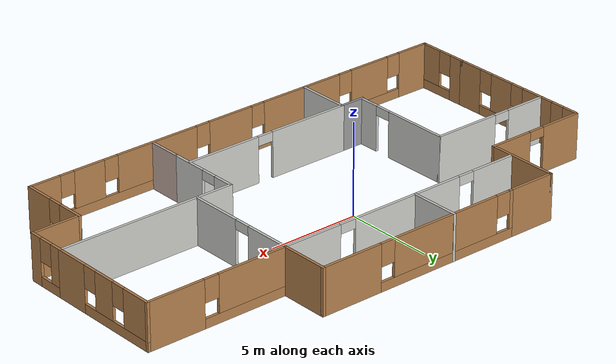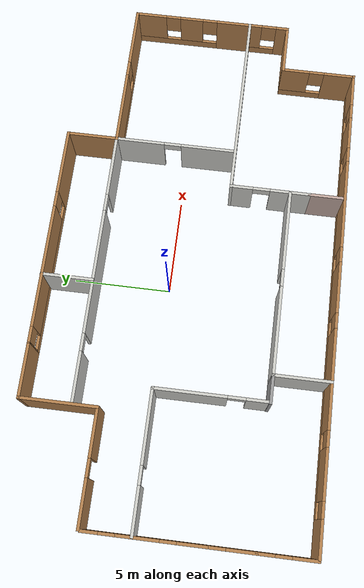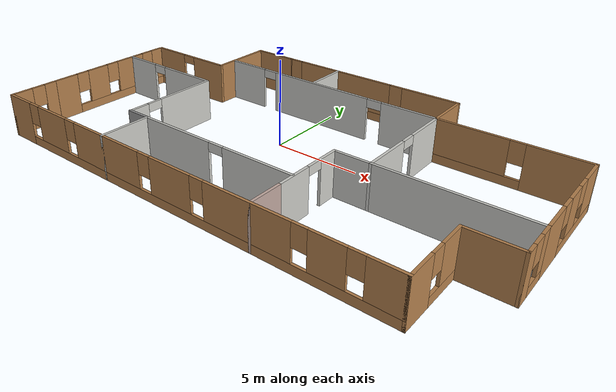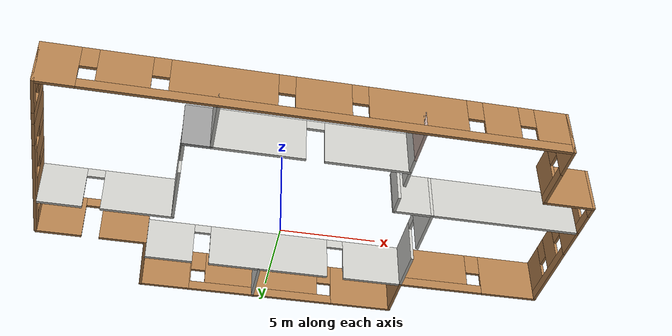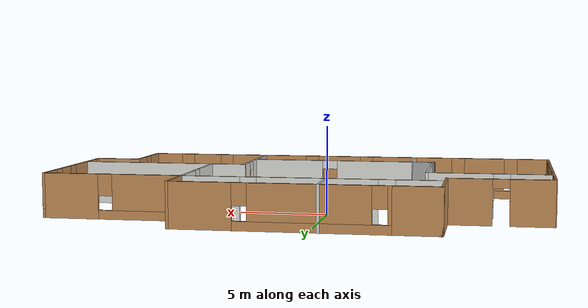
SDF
<?xml version='1.0'?>
<sdf version='1.6'>
  <model name='Building'>
    <pose frame=''>1.39 -1.1034 0 0 -0 0</pose>
    <link name='Wall_10'>
      <pose frame=''>-1.3 -7.4566 0 0 -0 0</pose>
      <visual name='Wall_10_Visual_0'>
        <pose frame=''>-11.6648 0 1.25 0 -0 0</pose>
        <geometry>
          <box>
            <size>1.92035 0.15 2.5</size>
          </box>
        </geometry>
        <material>
          <script>
            <uri>file://media/materials/scripts/gazebo.material</uri>
            <name>Gazebo/Wood</name>
          </script>
          <ambient>1 1 1 1</ambient>
        </material>
        <meta>
          <layer>0</layer>
        </meta>
      </visual>
      <collision name='Wall_10_Collision_0'>
        <geometry>
          <box>
            <size>1.92035 0.15 2.5</size>
          </box>
        </geometry>
        <pose frame=''>-11.6648 0 1.25 0 -0 0</pose>
      </collision>
      <visual name='Wall_10_Visual_1'>
        <pose frame=''>0.960175 0 0.25 0 -0 0</pose>
        <geometry>
          <box>
            <size>23.3296 0.15 0.5</size>
          </box>
        </geometry>
        <material>
          <script>
            <uri>file://media/materials/scripts/gazebo.material</uri>
            <name>Gazebo/Wood</name>
          </script>
          <ambient>1 1 1 1</ambient>
        </material>
        <meta>
          <layer>0</layer>
        </meta>
      </visual>
      <collision name='Wall_10_Collision_1'>
        <geometry>
          <box>
            <size>23.3296 0.15 0.5</size>
          </box>
        </geometry>
        <pose frame=''>0.960175 0 0.25 0 -0 0</pose>
      </collision>
      <visual name='Wall_10_Visual_2'>
        <pose frame=''>-8.67573 0 1.5 0 -0 0</pose>
        <geometry>
          <box>
            <size>2.45784 0.15 2</size>
          </box>
        </geometry>
        <material>
          <script>
            <uri>file://media/materials/scripts/gazebo.material</uri>
            <name>Gazebo/Wood</name>
          </script>
          <ambient>1 1 1 1</ambient>
        </material>
        <meta>
          <layer>0</layer>
        </meta>
      </visual>
      <collision name='Wall_10_Collision_2'>
        <geometry>
          <box>
            <size>2.45784 0.15 2</size>
          </box>
        </geometry>
        <pose frame=''>-8.67573 0 1.5 0 -0 0</pose>
      </collision>
      <visual name='Wall_10_Visual_3'>
        <pose frame=''>-4.15423 0 1.5 0 -0 0</pose>
        <geometry>
          <box>
            <size>4.98515 0.15 2</size>
          </box>
        </geometry>
        <material>
          <script>
            <uri>file://media/materials/scripts/gazebo.material</uri>
            <name>Gazebo/Wood</name>
          </script>
          <ambient>1 1 1 1</ambient>
        </material>
        <meta>
          <layer>0</layer>
        </meta>
      </visual>
      <collision name='Wall_10_Collision_3'>
        <geometry>
          <box>
            <size>4.98515 0.15 2</size>
          </box>
        </geometry>
        <pose frame=''>-4.15423 0 1.5 0 -0 0</pose>
      </collision>
      <visual name='Wall_10_Visual_4'>
        <pose frame=''>0.477931 0 1.5 0 -0 0</pose>
        <geometry>
          <box>
            <size>2.67918 0.15 2</size>
          </box>
        </geometry>
        <material>
          <script>
            <uri>file://media/materials/scripts/gazebo.material</uri>
            <name>Gazebo/Wood</name>
          </script>
          <ambient>1 1 1 1</ambient>
        </material>
        <meta>
          <layer>0</layer>
        </meta>
      </visual>
      <collision name='Wall_10_Collision_4'>
        <geometry>
          <box>
            <size>2.67918 0.15 2</size>
          </box>
        </geometry>
        <pose frame=''>0.477931 0 1.5 0 -0 0</pose>
      </collision>
      <visual name='Wall_10_Visual_5'>
        <pose frame=''>5.02918 0 1.5 0 -0 0</pose>
        <geometry>
          <box>
            <size>4.82332 0.15 2</size>
          </box>
        </geometry>
        <material>
          <script>
            <uri>file://media/materials/scripts/gazebo.material</uri>
            <name>Gazebo/Wood</name>
          </script>
          <ambient>1 1 1 1</ambient>
        </material>
        <meta>
          <layer>0</layer>
        </meta>
      </visual>
      <collision name='Wall_10_Collision_5'>
        <geometry>
          <box>
            <size>4.82332 0.15 2</size>
          </box>
        </geometry>
        <pose frame=''>5.02918 0 1.5 0 -0 0</pose>
      </collision>
      <visual name='Wall_10_Visual_6'>
        <pose frame=''>9.13542 0 1.5 0 -0 0</pose>
        <geometry>
          <box>
            <size>1.78916 0.15 2</size>
          </box>
        </geometry>
        <material>
          <script>
            <uri>file://media/materials/scripts/gazebo.material</uri>
            <name>Gazebo/Wood</name>
          </script>
          <ambient>1 1 1 1</ambient>
        </material>
        <meta>
          <layer>0</layer>
        </meta>
      </visual>
      <collision name='Wall_10_Collision_6'>
        <geometry>
          <box>
            <size>1.78916 0.15 2</size>
          </box>
        </geometry>
        <pose frame=''>9.13542 0 1.5 0 -0 0</pose>
      </collision>
      <visual name='Wall_10_Visual_7'>
        <pose frame=''>11.7275 0 1.5 0 -0 0</pose>
        <geometry>
          <box>
            <size>1.795 0.15 2</size>
          </box>
        </geometry>
        <material>
          <script>
            <uri>file://media/materials/scripts/gazebo.material</uri>
            <name>Gazebo/Wood</name>
          </script>
          <ambient>1 1 1 1</ambient>
        </material>
        <meta>
          <layer>0</layer>
        </meta>
      </visual>
      <collision name='Wall_10_Collision_7'>
        <geometry>
          <box>
            <size>1.795 0.15 2</size>
          </box>
        </geometry>
        <pose frame=''>11.7275 0 1.5 0 -0 0</pose>
      </collision>
      <visual name='Wall_10_Visual_8'>
        <pose frame=''>-10.3046 0 1.9 0 -0 0</pose>
        <geometry>
          <box>
            <size>0.8 0.15 1.2</size>
          </box>
        </geometry>
        <material>
          <script>
            <uri>file://media/materials/scripts/gazebo.material</uri>
            <name>Gazebo/Wood</name>
          </script>
          <ambient>1 1 1 1</ambient>
        </material>
        <meta>
          <layer>0</layer>
        </meta>
      </visual>
      <collision name='Wall_10_Collision_8'>
        <geometry>
          <box>
            <size>0.8 0.15 1.2</size>
          </box>
        </geometry>
        <pose frame=''>-10.3046 0 1.9 0 -0 0</pose>
      </collision>
      <visual name='Wall_10_Visual_9'>
        <pose frame=''>-7.04681 0 1.9 0 -0 0</pose>
        <geometry>
          <box>
            <size>0.8 0.15 1.2</size>
          </box>
        </geometry>
        <material>
          <script>
            <uri>file://media/materials/scripts/gazebo.material</uri>
            <name>Gazebo/Wood</name>
          </script>
          <ambient>1 1 1 1</ambient>
        </material>
        <meta>
          <layer>0</layer>
        </meta>
      </visual>
      <collision name='Wall_10_Collision_9'>
        <geometry>
          <box>
            <size>0.8 0.15 1.2</size>
          </box>
        </geometry>
        <pose frame=''>-7.04681 0 1.9 0 -0 0</pose>
      </collision>
      <visual name='Wall_10_Visual_10'>
        <pose frame=''>-1.26166 0 1.9 0 -0 0</pose>
        <geometry>
          <box>
            <size>0.8 0.15 1.2</size>
          </box>
        </geometry>
        <material>
          <script>
            <uri>file://media/materials/scripts/gazebo.material</uri>
            <name>Gazebo/Wood</name>
          </script>
          <ambient>1 1 1 1</ambient>
        </material>
        <meta>
          <layer>0</layer>
        </meta>
      </visual>
      <collision name='Wall_10_Collision_10'>
        <geometry>
          <box>
            <size>0.8 0.15 1.2</size>
          </box>
        </geometry>
        <pose frame=''>-1.26166 0 1.9 0 -0 0</pose>
      </collision>
      <visual name='Wall_10_Visual_11'>
        <pose frame=''>2.21752 0 1.9 0 -0 0</pose>
        <geometry>
          <box>
            <size>0.8 0.15 1.2</size>
          </box>
        </geometry>
        <material>
          <script>
            <uri>file://media/materials/scripts/gazebo.material</uri>
            <name>Gazebo/Wood</name>
          </script>
          <ambient>1 1 1 1</ambient>
        </material>
        <meta>
          <layer>0</layer>
        </meta>
      </visual>
      <collision name='Wall_10_Collision_11'>
        <geometry>
          <box>
            <size>0.8 0.15 1.2</size>
          </box>
        </geometry>
        <pose frame=''>2.21752 0 1.9 0 -0 0</pose>
      </collision>
      <visual name='Wall_10_Visual_12'>
        <pose frame=''>7.84085 0 1.9 0 -0 0</pose>
        <geometry>
          <box>
            <size>0.8 0.15 1.2</size>
          </box>
        </geometry>
        <material>
          <script>
            <uri>file://media/materials/scripts/gazebo.material</uri>
            <name>Gazebo/Wood</name>
          </script>
          <ambient>1 1 1 1</ambient>
        </material>
        <meta>
          <layer>0</layer>
        </meta>
      </visual>
      <collision name='Wall_10_Collision_12'>
        <geometry>
          <box>
            <size>0.8 0.15 1.2</size>
          </box>
        </geometry>
        <pose frame=''>7.84085 0 1.9 0 -0 0</pose>
      </collision>
      <visual name='Wall_10_Visual_13'>
        <pose frame=''>10.43 0 1.9 0 -0 0</pose>
        <geometry>
          <box>
            <size>0.8 0.15 1.2</size>
          </box>
        </geometry>
        <material>
          <script>
            <uri>file://media/materials/scripts/gazebo.material</uri>
            <name>Gazebo/Wood</name>
          </script>
          <ambient>1 1 1 1</ambient>
        </material>
        <meta>
          <layer>0</layer>
        </meta>
      </visual>
      <collision name='Wall_10_Collision_13'>
        <geometry>
          <box>
            <size>0.8 0.15 1.2</size>
          </box>
        </geometry>
        <pose frame=''>10.43 0 1.9 0 -0 0</pose>
      </collision>
    </link>
    <link name='Wall_11'>
      <pose frame=''>11.25 -5.5316 0 0 -0 1.5708</pose>
      <visual name='Wall_11_Visual_0'>
        <pose frame=''>-1.15767 0 1.25 0 -0 0</pose>
        <geometry>
          <box>
            <size>1.68466 0.15 2.5</size>
          </box>
        </geometry>
        <material>
          <script>
            <uri>file://media/materials/scripts/gazebo.material</uri>
            <name>Gazebo/Wood</name>
          </script>
          <ambient>1 1 1 1</ambient>
        </material>
        <meta>
          <layer>0</layer>
        </meta>
      </visual>
      <collision name='Wall_11_Collision_0'>
        <geometry>
          <box>
            <size>1.68466 0.15 2.5</size>
          </box>
        </geometry>
        <pose frame=''>-1.15767 0 1.25 0 -0 0</pose>
      </collision>
      <visual name='Wall_11_Visual_1'>
        <pose frame=''>0.842329 0 0.25 0 -0 0</pose>
        <geometry>
          <box>
            <size>2.31534 0.15 0.5</size>
          </box>
        </geometry>
        <material>
          <script>
            <uri>file://media/materials/scripts/gazebo.material</uri>
            <name>Gazebo/Wood</name>
          </script>
          <ambient>1 1 1 1</ambient>
        </material>
        <meta>
          <layer>0</layer>
        </meta>
      </visual>
      <collision name='Wall_11_Collision_1'>
        <geometry>
          <box>
            <size>2.31534 0.15 0.5</size>
          </box>
        </geometry>
        <pose frame=''>0.842329 0 0.25 0 -0 0</pose>
      </collision>
      <visual name='Wall_11_Visual_2'>
        <pose frame=''>1.24233 0 1.5 0 -0 0</pose>
        <geometry>
          <box>
            <size>1.51534 0.15 2</size>
          </box>
        </geometry>
        <material>
          <script>
            <uri>file://media/materials/scripts/gazebo.material</uri>
            <name>Gazebo/Wood</name>
          </script>
          <ambient>1 1 1 1</ambient>
        </material>
        <meta>
          <layer>0</layer>
        </meta>
      </visual>
      <collision name='Wall_11_Collision_2'>
        <geometry>
          <box>
            <size>1.51534 0.15 2</size>
          </box>
        </geometry>
        <pose frame=''>1.24233 0 1.5 0 -0 0</pose>
      </collision>
      <visual name='Wall_11_Visual_3'>
        <pose frame=''>0.084657 0 1.9 0 -0 0</pose>
        <geometry>
          <box>
            <size>0.8 0.15 1.2</size>
          </box>
        </geometry>
        <material>
          <script>
            <uri>file://media/materials/scripts/gazebo.material</uri>
            <name>Gazebo/Wood</name>
          </script>
          <ambient>1 1 1 1</ambient>
        </material>
        <meta>
          <layer>0</layer>
        </meta>
      </visual>
      <collision name='Wall_11_Collision_3'>
        <geometry>
          <box>
            <size>0.8 0.15 1.2</size>
          </box>
        </geometry>
        <pose frame=''>0.084657 0 1.9 0 -0 0</pose>
      </collision>
    </link>
    <link name='Wall_12'>
      <collision name='Wall_12_Collision'>
        <geometry>
          <box>
            <size>2.75 0.15 2.5</size>
          </box>
        </geometry>
        <pose frame=''>0 0 1.25 0 -0 0</pose>
      </collision>
      <visual name='Wall_12_Visual'>
        <pose frame=''>0 0 1.25 0 -0 0</pose>
        <geometry>
          <box>
            <size>2.75 0.15 2.5</size>
          </box>
        </geometry>
        <material>
          <script>
            <uri>file://media/materials/scripts/gazebo.material</uri>
            <name>Gazebo/Wood</name>
          </script>
          <ambient>1 1 1 1</ambient>
        </material>
        <meta>
          <layer>0</layer>
        </meta>
      </visual>
      <pose frame=''>12.55 -3.6066 0 0 -0 0</pose>
    </link>
    <link name='Wall_13'>
      <pose frame=''>13.85 -2.5566 0 0 -0 1.5708</pose>
      <visual name='Wall_13_Visual_0'>
        <pose frame=''>-0.771499 0 1.25 0 -0 0</pose>
        <geometry>
          <box>
            <size>0.707003 0.15 2.5</size>
          </box>
        </geometry>
        <material>
          <script>
            <uri>file://media/materials/scripts/gazebo.material</uri>
            <name>Gazebo/Wood</name>
          </script>
          <ambient>1 1 1 1</ambient>
        </material>
        <meta>
          <layer>0</layer>
        </meta>
      </visual>
      <collision name='Wall_13_Collision_0'>
        <geometry>
          <box>
            <size>0.707003 0.15 2.5</size>
          </box>
        </geometry>
        <pose frame=''>-0.771499 0 1.25 0 -0 0</pose>
      </collision>
      <visual name='Wall_13_Visual_1'>
        <pose frame=''>0.353501 0 0.25 0 -0 0</pose>
        <geometry>
          <box>
            <size>1.543 0.15 0.5</size>
          </box>
        </geometry>
        <material>
          <script>
            <uri>file://media/materials/scripts/gazebo.material</uri>
            <name>Gazebo/Wood</name>
          </script>
          <ambient>1 1 1 1</ambient>
        </material>
        <meta>
          <layer>0</layer>
        </meta>
      </visual>
      <collision name='Wall_13_Collision_1'>
        <geometry>
          <box>
            <size>1.543 0.15 0.5</size>
          </box>
        </geometry>
        <pose frame=''>0.353501 0 0.25 0 -0 0</pose>
      </collision>
      <visual name='Wall_13_Visual_2'>
        <pose frame=''>0.753501 0 1.5 0 -0 0</pose>
        <geometry>
          <box>
            <size>0.742997 0.15 2</size>
          </box>
        </geometry>
        <material>
          <script>
            <uri>file://media/materials/scripts/gazebo.material</uri>
            <name>Gazebo/Wood</name>
          </script>
          <ambient>1 1 1 1</ambient>
        </material>
        <meta>
          <layer>0</layer>
        </meta>
      </visual>
      <collision name='Wall_13_Collision_2'>
        <geometry>
          <box>
            <size>0.742997 0.15 2</size>
          </box>
        </geometry>
        <pose frame=''>0.753501 0 1.5 0 -0 0</pose>
      </collision>
      <visual name='Wall_13_Visual_3'>
        <pose frame=''>-0.017997 0 1.9 0 -0 0</pose>
        <geometry>
          <box>
            <size>0.8 0.15 1.2</size>
          </box>
        </geometry>
        <material>
          <script>
            <uri>file://media/materials/scripts/gazebo.material</uri>
            <name>Gazebo/Wood</name>
          </script>
          <ambient>1 1 1 1</ambient>
        </material>
        <meta>
          <layer>0</layer>
        </meta>
      </visual>
      <collision name='Wall_13_Collision_3'>
        <geometry>
          <box>
            <size>0.8 0.15 1.2</size>
          </box>
        </geometry>
        <pose frame=''>-0.017997 0 1.9 0 -0 0</pose>
      </collision>
    </link>
    <link name='Wall_14'>
      <collision name='Wall_14_Collision'>
        <geometry>
          <box>
            <size>10 0.15 2.5</size>
          </box>
        </geometry>
        <pose frame=''>0 0 1.25 0 -0 0</pose>
      </collision>
      <visual name='Wall_14_Visual'>
        <pose frame=''>0 0 1.25 0 -0 0</pose>
        <geometry>
          <box>
            <size>10 0.15 2.5</size>
          </box>
        </geometry>
        <material>
          <script>
            <uri>file://media/materials/scripts/gazebo.material</uri>
            <name>Gazebo/CeilingTiled</name>
          </script>
          <ambient>0.760784 0.662745 0.627451 1</ambient>
        </material>
        <meta>
          <layer>0</layer>
        </meta>
      </visual>
      <pose frame=''>8.925 -1.5066 0 0 -0 3.14159</pose>
    </link>
    <link name='Wall_15'>
      <pose frame=''>4 -3.5566 0 0 0 -1.5708</pose>
      <visual name='Wall_15_Visual_0'>
        <pose frame=''>-1.51554 0 1.25 0 -0 0</pose>
        <geometry>
          <box>
            <size>1.21892 0.15 2.5</size>
          </box>
        </geometry>
        <material>
          <script>
            <uri>file://media/materials/scripts/gazebo.material</uri>
            <name>Gazebo/CeilingTiled</name>
          </script>
          <ambient>0.760784 0.662745 0.627451 1</ambient>
        </material>
        <meta>
          <layer>0</layer>
        </meta>
      </visual>
      <collision name='Wall_15_Collision_0'>
        <geometry>
          <box>
            <size>1.21892 0.15 2.5</size>
          </box>
        </geometry>
        <pose frame=''>-1.51554 0 1.25 0 -0 0</pose>
      </collision>
      <visual name='Wall_15_Visual_1'>
        <pose frame=''>1.05946 0 1.25 0 -0 0</pose>
        <geometry>
          <box>
            <size>2.13108 0.15 2.5</size>
          </box>
        </geometry>
        <material>
          <script>
            <uri>file://media/materials/scripts/gazebo.material</uri>
            <name>Gazebo/CeilingTiled</name>
          </script>
          <ambient>0.760784 0.662745 0.627451 1</ambient>
        </material>
        <meta>
          <layer>0</layer>
        </meta>
      </visual>
      <collision name='Wall_15_Collision_1'>
        <geometry>
          <box>
            <size>2.13108 0.15 2.5</size>
          </box>
        </geometry>
        <pose frame=''>1.05946 0 1.25 0 -0 0</pose>
      </collision>
      <visual name='Wall_15_Visual_2'>
        <pose frame=''>-0.45608 0 2.25 0 -0 0</pose>
        <geometry>
          <box>
            <size>0.9 0.15 0.5</size>
          </box>
        </geometry>
        <material>
          <script>
            <uri>file://media/materials/scripts/gazebo.material</uri>
            <name>Gazebo/CeilingTiled</name>
          </script>
          <ambient>0.760784 0.662745 0.627451 1</ambient>
        </material>
        <meta>
          <layer>0</layer>
        </meta>
      </visual>
      <collision name='Wall_15_Collision_2'>
        <geometry>
          <box>
            <size>0.9 0.15 0.5</size>
          </box>
        </geometry>
        <pose frame=''>-0.45608 0 2.25 0 -0 0</pose>
      </collision>
    </link>
    <link name='Wall_22'>
      <pose frame=''>13.85 1.6684 0 0 -0 1.5708</pose>
      <visual name='Wall_22_Visual_0'>
        <pose frame=''>-2.28782 0 1.25 0 -0 0</pose>
        <geometry>
          <box>
            <size>1.92436 0.15 2.5</size>
          </box>
        </geometry>
        <material>
          <script>
            <uri>file://media/materials/scripts/gazebo.material</uri>
            <name>Gazebo/Wood</name>
          </script>
          <ambient>1 1 1 1</ambient>
        </material>
        <meta>
          <layer>0</layer>
        </meta>
      </visual>
      <collision name='Wall_22_Collision_0'>
        <geometry>
          <box>
            <size>1.92436 0.15 2.5</size>
          </box>
        </geometry>
        <pose frame=''>-2.28782 0 1.25 0 -0 0</pose>
      </collision>
      <visual name='Wall_22_Visual_1'>
        <pose frame=''>0.96218 0 0.25 0 -0 0</pose>
        <geometry>
          <box>
            <size>4.57564 0.15 0.5</size>
          </box>
        </geometry>
        <material>
          <script>
            <uri>file://media/materials/scripts/gazebo.material</uri>
            <name>Gazebo/Wood</name>
          </script>
          <ambient>1 1 1 1</ambient>
        </material>
        <meta>
          <layer>0</layer>
        </meta>
      </visual>
      <collision name='Wall_22_Collision_1'>
        <geometry>
          <box>
            <size>4.57564 0.15 0.5</size>
          </box>
        </geometry>
        <pose frame=''>0.96218 0 0.25 0 -0 0</pose>
      </collision>
      <visual name='Wall_22_Visual_2'>
        <pose frame=''>0.105977 0 1.5 0 -0 0</pose>
        <geometry>
          <box>
            <size>1.26323 0.15 2</size>
          </box>
        </geometry>
        <material>
          <script>
            <uri>file://media/materials/scripts/gazebo.material</uri>
            <name>Gazebo/Wood</name>
          </script>
          <ambient>1 1 1 1</ambient>
        </material>
        <meta>
          <layer>0</layer>
        </meta>
      </visual>
      <collision name='Wall_22_Collision_2'>
        <geometry>
          <box>
            <size>1.26323 0.15 2</size>
          </box>
        </geometry>
        <pose frame=''>0.105977 0 1.5 0 -0 0</pose>
      </collision>
      <visual name='Wall_22_Visual_3'>
        <pose frame=''>2.3938 0 1.5 0 -0 0</pose>
        <geometry>
          <box>
            <size>1.7124 0.15 2</size>
          </box>
        </geometry>
        <material>
          <script>
            <uri>file://media/materials/scripts/gazebo.material</uri>
            <name>Gazebo/Wood</name>
          </script>
          <ambient>1 1 1 1</ambient>
        </material>
        <meta>
          <layer>0</layer>
        </meta>
      </visual>
      <collision name='Wall_22_Collision_3'>
        <geometry>
          <box>
            <size>1.7124 0.15 2</size>
          </box>
        </geometry>
        <pose frame=''>2.3938 0 1.5 0 -0 0</pose>
      </collision>
      <visual name='Wall_22_Visual_4'>
        <pose frame=''>-0.92564 0 1.9 0 -0 0</pose>
        <geometry>
          <box>
            <size>0.8 0.15 1.2</size>
          </box>
        </geometry>
        <material>
          <script>
            <uri>file://media/materials/scripts/gazebo.material</uri>
            <name>Gazebo/Wood</name>
          </script>
          <ambient>1 1 1 1</ambient>
        </material>
        <meta>
          <layer>0</layer>
        </meta>
      </visual>
      <collision name='Wall_22_Collision_4'>
        <geometry>
          <box>
            <size>0.8 0.15 1.2</size>
          </box>
        </geometry>
        <pose frame=''>-0.92564 0 1.9 0 -0 0</pose>
      </collision>
      <visual name='Wall_22_Visual_5'>
        <pose frame=''>1.13759 0 1.9 0 -0 0</pose>
        <geometry>
          <box>
            <size>0.8 0.15 1.2</size>
          </box>
        </geometry>
        <material>
          <script>
            <uri>file://media/materials/scripts/gazebo.material</uri>
            <name>Gazebo/Wood</name>
          </script>
          <ambient>1 1 1 1</ambient>
        </material>
        <meta>
          <layer>0</layer>
        </meta>
      </visual>
      <collision name='Wall_22_Collision_5'>
        <geometry>
          <box>
            <size>0.8 0.15 1.2</size>
          </box>
        </geometry>
        <pose frame=''>1.13759 0 1.9 0 -0 0</pose>
      </collision>
    </link>
    <link name='Wall_23'>
      <pose frame=''>9.925 4.8434 0 0 -0 3.14159</pose>
      <visual name='Wall_23_Visual_0'>
        <pose frame=''>-2.38911 0 1.25 0 -0 0</pose>
        <geometry>
          <box>
            <size>3.22179 0.15 2.5</size>
          </box>
        </geometry>
        <material>
          <script>
            <uri>file://media/materials/scripts/gazebo.material</uri>
            <name>Gazebo/Wood</name>
          </script>
          <ambient>1 1 1 1</ambient>
        </material>
        <meta>
          <layer>0</layer>
        </meta>
      </visual>
      <collision name='Wall_23_Collision_0'>
        <geometry>
          <box>
            <size>3.22179 0.15 2.5</size>
          </box>
        </geometry>
        <pose frame=''>-2.38911 0 1.25 0 -0 0</pose>
      </collision>
      <visual name='Wall_23_Visual_1'>
        <pose frame=''>1.61089 0 0.25 0 -0 0</pose>
        <geometry>
          <box>
            <size>4.77822 0.15 0.5</size>
          </box>
        </geometry>
        <material>
          <script>
            <uri>file://media/materials/scripts/gazebo.material</uri>
            <name>Gazebo/Wood</name>
          </script>
          <ambient>1 1 1 1</ambient>
        </material>
        <meta>
          <layer>0</layer>
        </meta>
      </visual>
      <collision name='Wall_23_Collision_1'>
        <geometry>
          <box>
            <size>4.77822 0.15 0.5</size>
          </box>
        </geometry>
        <pose frame=''>1.61089 0 0.25 0 -0 0</pose>
      </collision>
      <visual name='Wall_23_Visual_2'>
        <pose frame=''>2.01089 0 1.5 0 -0 0</pose>
        <geometry>
          <box>
            <size>3.97822 0.15 2</size>
          </box>
        </geometry>
        <material>
          <script>
            <uri>file://media/materials/scripts/gazebo.material</uri>
            <name>Gazebo/Wood</name>
          </script>
          <ambient>1 1 1 1</ambient>
        </material>
        <meta>
          <layer>0</layer>
        </meta>
      </visual>
      <collision name='Wall_23_Collision_2'>
        <geometry>
          <box>
            <size>3.97822 0.15 2</size>
          </box>
        </geometry>
        <pose frame=''>2.01089 0 1.5 0 -0 0</pose>
      </collision>
      <visual name='Wall_23_Visual_3'>
        <pose frame=''>-0.378215 0 1.9 0 -0 0</pose>
        <geometry>
          <box>
            <size>0.8 0.15 1.2</size>
          </box>
        </geometry>
        <material>
          <script>
            <uri>file://media/materials/scripts/gazebo.material</uri>
            <name>Gazebo/Wood</name>
          </script>
          <ambient>1 1 1 1</ambient>
        </material>
        <meta>
          <layer>0</layer>
        </meta>
      </visual>
      <collision name='Wall_23_Collision_3'>
        <geometry>
          <box>
            <size>0.8 0.15 1.2</size>
          </box>
        </geometry>
        <pose frame=''>-0.378215 0 1.9 0 -0 0</pose>
      </collision>
    </link>
    <link name='Wall_24'>
      <pose frame=''>6 1.6684 0 0 0 -1.5708</pose>
      <visual name='Wall_24_Visual_0'>
        <pose frame=''>-1.93333 0 1.25 0 -0 0</pose>
        <geometry>
          <box>
            <size>2.63334 0.15 2.5</size>
          </box>
        </geometry>
        <material>
          <script>
            <uri>file://media/materials/scripts/gazebo.material</uri>
            <name>Gazebo/CeilingTiled</name>
          </script>
          <ambient>0.760784 0.662745 0.627451 1</ambient>
        </material>
        <meta>
          <layer>0</layer>
        </meta>
      </visual>
      <collision name='Wall_24_Collision_0'>
        <geometry>
          <box>
            <size>2.63334 0.15 2.5</size>
          </box>
        </geometry>
        <pose frame=''>-1.93333 0 1.25 0 -0 0</pose>
      </collision>
      <visual name='Wall_24_Visual_1'>
        <pose frame=''>1.76667 0 1.25 0 -0 0</pose>
        <geometry>
          <box>
            <size>2.96666 0.15 2.5</size>
          </box>
        </geometry>
        <material>
          <script>
            <uri>file://media/materials/scripts/gazebo.material</uri>
            <name>Gazebo/CeilingTiled</name>
          </script>
          <ambient>0.760784 0.662745 0.627451 1</ambient>
        </material>
        <meta>
          <layer>0</layer>
        </meta>
      </visual>
      <collision name='Wall_24_Collision_1'>
        <geometry>
          <box>
            <size>2.96666 0.15 2.5</size>
          </box>
        </geometry>
        <pose frame=''>1.76667 0 1.25 0 -0 0</pose>
      </collision>
      <visual name='Wall_24_Visual_2'>
        <pose frame=''>-0.166661 0 2.25 0 -0 0</pose>
        <geometry>
          <box>
            <size>0.9 0.15 0.5</size>
          </box>
        </geometry>
        <material>
          <script>
            <uri>file://media/materials/scripts/gazebo.material</uri>
            <name>Gazebo/CeilingTiled</name>
          </script>
          <ambient>0.760784 0.662745 0.627451 1</ambient>
        </material>
        <meta>
          <layer>0</layer>
        </meta>
      </visual>
      <collision name='Wall_24_Collision_2'>
        <geometry>
          <box>
            <size>0.9 0.15 0.5</size>
          </box>
        </geometry>
        <pose frame=''>-0.166661 0 2.25 0 -0 0</pose>
      </collision>
    </link>
    <link name='Wall_26'>
      <collision name='Wall_26_Collision'>
        <geometry>
          <box>
            <size>2.75 0.15 2.5</size>
          </box>
        </geometry>
        <pose frame=''>0 0 1.25 0 -0 0</pose>
      </collision>
      <visual name='Wall_26_Visual'>
        <pose frame=''>0 0 1.25 0 -0 0</pose>
        <geometry>
          <box>
            <size>2.75 0.15 2.5</size>
          </box>
        </geometry>
        <material>
          <script>
            <uri>file://media/materials/scripts/gazebo.material</uri>
            <name>Gazebo/Wood</name>
          </script>
          <ambient>1 1 1 1</ambient>
        </material>
        <meta>
          <layer>0</layer>
        </meta>
      </visual>
      <pose frame=''>6 6.1434 0 0 -0 1.5708</pose>
    </link>
    <link name='Wall_27'>
      <pose frame=''>0.2 7.4434 0 0 -0 3.14159</pose>
      <visual name='Wall_27_Visual_0'>
        <pose frame=''>-4.12332 0 1.25 0 -0 0</pose>
        <geometry>
          <box>
            <size>3.50336 0.15 2.5</size>
          </box>
        </geometry>
        <material>
          <script>
            <uri>file://media/materials/scripts/gazebo.material</uri>
            <name>Gazebo/Wood</name>
          </script>
          <ambient>1 1 1 1</ambient>
        </material>
        <meta>
          <layer>0</layer>
        </meta>
      </visual>
      <collision name='Wall_27_Collision_0'>
        <geometry>
          <box>
            <size>3.50336 0.15 2.5</size>
          </box>
        </geometry>
        <pose frame=''>-4.12332 0 1.25 0 -0 0</pose>
      </collision>
      <visual name='Wall_27_Visual_1'>
        <pose frame=''>1.75168 0 0.25 0 -0 0</pose>
        <geometry>
          <box>
            <size>8.24664 0.15 0.5</size>
          </box>
        </geometry>
        <material>
          <script>
            <uri>file://media/materials/scripts/gazebo.material</uri>
            <name>Gazebo/Wood</name>
          </script>
          <ambient>1 1 1 1</ambient>
        </material>
        <meta>
          <layer>0</layer>
        </meta>
      </visual>
      <collision name='Wall_27_Collision_1'>
        <geometry>
          <box>
            <size>8.24664 0.15 0.5</size>
          </box>
        </geometry>
        <pose frame=''>1.75168 0 0.25 0 -0 0</pose>
      </collision>
      <visual name='Wall_27_Visual_2'>
        <pose frame=''>1.64913 0 1.5 0 -0 0</pose>
        <geometry>
          <box>
            <size>6.44155 0.15 2</size>
          </box>
        </geometry>
        <material>
          <script>
            <uri>file://media/materials/scripts/gazebo.material</uri>
            <name>Gazebo/Wood</name>
          </script>
          <ambient>1 1 1 1</ambient>
        </material>
        <meta>
          <layer>0</layer>
        </meta>
      </visual>
      <collision name='Wall_27_Collision_2'>
        <geometry>
          <box>
            <size>6.44155 0.15 2</size>
          </box>
        </geometry>
        <pose frame=''>1.64913 0 1.5 0 -0 0</pose>
      </collision>
      <visual name='Wall_27_Visual_3'>
        <pose frame=''>5.77245 0 1.5 0 -0 0</pose>
        <geometry>
          <box>
            <size>0.205095 0.15 2</size>
          </box>
        </geometry>
        <material>
          <script>
            <uri>file://media/materials/scripts/gazebo.material</uri>
            <name>Gazebo/Wood</name>
          </script>
          <ambient>1 1 1 1</ambient>
        </material>
        <meta>
          <layer>0</layer>
        </meta>
      </visual>
      <collision name='Wall_27_Collision_3'>
        <geometry>
          <box>
            <size>0.205095 0.15 2</size>
          </box>
        </geometry>
        <pose frame=''>5.77245 0 1.5 0 -0 0</pose>
      </collision>
      <visual name='Wall_27_Visual_4'>
        <pose frame=''>-1.97164 0 1.9 0 -0 0</pose>
        <geometry>
          <box>
            <size>0.8 0.15 1.2</size>
          </box>
        </geometry>
        <material>
          <script>
            <uri>file://media/materials/scripts/gazebo.material</uri>
            <name>Gazebo/Wood</name>
          </script>
          <ambient>1 1 1 1</ambient>
        </material>
        <meta>
          <layer>0</layer>
        </meta>
      </visual>
      <collision name='Wall_27_Collision_4'>
        <geometry>
          <box>
            <size>0.8 0.15 1.2</size>
          </box>
        </geometry>
        <pose frame=''>-1.97164 0 1.9 0 -0 0</pose>
      </collision>
      <visual name='Wall_27_Visual_5'>
        <pose frame=''>5.2699 0 1.9 0 -0 0</pose>
        <geometry>
          <box>
            <size>0.8 0.15 1.2</size>
          </box>
        </geometry>
        <material>
          <script>
            <uri>file://media/materials/scripts/gazebo.material</uri>
            <name>Gazebo/Wood</name>
          </script>
          <ambient>1 1 1 1</ambient>
        </material>
        <meta>
          <layer>0</layer>
        </meta>
      </visual>
      <collision name='Wall_27_Collision_5'>
        <geometry>
          <box>
            <size>0.8 0.15 1.2</size>
          </box>
        </geometry>
        <pose frame=''>5.2699 0 1.9 0 -0 0</pose>
      </collision>
    </link>
    <link name='Wall_30'>
      <collision name='Wall_30_Collision'>
        <geometry>
          <box>
            <size>3 0.15 2.5</size>
          </box>
        </geometry>
        <pose frame=''>0 0 1.25 0 -0 0</pose>
      </collision>
      <visual name='Wall_30_Visual'>
        <pose frame=''>0 0 1.25 0 -0 0</pose>
        <geometry>
          <box>
            <size>3 0.15 2.5</size>
          </box>
        </geometry>
        <material>
          <script>
            <uri>file://media/materials/scripts/gazebo.material</uri>
            <name>Gazebo/CeilingTiled</name>
          </script>
          <ambient>0.760784 0.662745 0.627451 1</ambient>
        </material>
        <meta>
          <layer>0</layer>
        </meta>
      </visual>
      <pose frame=''>-5.65 -6.0316 0 0 0 -1.5708</pose>
    </link>
    <link name='Wall_32'>
      <pose frame=''>-13.85 -0.556603 0 0 -0 1.5708</pose>
      <visual name='Wall_32_Visual_0'>
        <pose frame=''>-3.38161 0 1.25 0 -0 0</pose>
        <geometry>
          <box>
            <size>1.48677 0.15 2.5</size>
          </box>
        </geometry>
        <material>
          <script>
            <uri>file://media/materials/scripts/gazebo.material</uri>
            <name>Gazebo/Wood</name>
          </script>
          <ambient>1 1 1 1</ambient>
        </material>
        <meta>
          <layer>0</layer>
        </meta>
      </visual>
      <collision name='Wall_32_Collision_0'>
        <geometry>
          <box>
            <size>1.48677 0.15 2.5</size>
          </box>
        </geometry>
        <pose frame=''>-3.38161 0 1.25 0 -0 0</pose>
      </collision>
      <visual name='Wall_32_Visual_1'>
        <pose frame=''>0.743388 0 0.25 0 -0 0</pose>
        <geometry>
          <box>
            <size>6.76323 0.15 0.5</size>
          </box>
        </geometry>
        <material>
          <script>
            <uri>file://media/materials/scripts/gazebo.material</uri>
            <name>Gazebo/Wood</name>
          </script>
          <ambient>1 1 1 1</ambient>
        </material>
        <meta>
          <layer>0</layer>
        </meta>
      </visual>
      <collision name='Wall_32_Collision_1'>
        <geometry>
          <box>
            <size>6.76323 0.15 0.5</size>
          </box>
        </geometry>
        <pose frame=''>0.743388 0 0.25 0 -0 0</pose>
      </collision>
      <visual name='Wall_32_Visual_2'>
        <pose frame=''>-1.11534 0 1.5 0 -0 0</pose>
        <geometry>
          <box>
            <size>1.44577 0.15 2</size>
          </box>
        </geometry>
        <material>
          <script>
            <uri>file://media/materials/scripts/gazebo.material</uri>
            <name>Gazebo/Wood</name>
          </script>
          <ambient>1 1 1 1</ambient>
        </material>
        <meta>
          <layer>0</layer>
        </meta>
      </visual>
      <collision name='Wall_32_Collision_2'>
        <geometry>
          <box>
            <size>1.44577 0.15 2</size>
          </box>
        </geometry>
        <pose frame=''>-1.11534 0 1.5 0 -0 0</pose>
      </collision>
      <visual name='Wall_32_Visual_3'>
        <pose frame=''>1.42268 0 1.5 0 -0 0</pose>
        <geometry>
          <box>
            <size>2.03028 0.15 2</size>
          </box>
        </geometry>
        <material>
          <script>
            <uri>file://media/materials/scripts/gazebo.material</uri>
            <name>Gazebo/Wood</name>
          </script>
          <ambient>1 1 1 1</ambient>
        </material>
        <meta>
          <layer>0</layer>
        </meta>
      </visual>
      <collision name='Wall_32_Collision_3'>
        <geometry>
          <box>
            <size>2.03028 0.15 2</size>
          </box>
        </geometry>
        <pose frame=''>1.42268 0 1.5 0 -0 0</pose>
      </collision>
      <visual name='Wall_32_Visual_4'>
        <pose frame=''>3.68141 0 1.5 0 -0 0</pose>
        <geometry>
          <box>
            <size>0.887175 0.15 2</size>
          </box>
        </geometry>
        <material>
          <script>
            <uri>file://media/materials/scripts/gazebo.material</uri>
            <name>Gazebo/Wood</name>
          </script>
          <ambient>1 1 1 1</ambient>
        </material>
        <meta>
          <layer>0</layer>
        </meta>
      </visual>
      <collision name='Wall_32_Collision_4'>
        <geometry>
          <box>
            <size>0.887175 0.15 2</size>
          </box>
        </geometry>
        <pose frame=''>3.68141 0 1.5 0 -0 0</pose>
      </collision>
      <visual name='Wall_32_Visual_5'>
        <pose frame=''>-2.23822 0 1.9 0 -0 0</pose>
        <geometry>
          <box>
            <size>0.8 0.15 1.2</size>
          </box>
        </geometry>
        <material>
          <script>
            <uri>file://media/materials/scripts/gazebo.material</uri>
            <name>Gazebo/Wood</name>
          </script>
          <ambient>1 1 1 1</ambient>
        </material>
        <meta>
          <layer>0</layer>
        </meta>
      </visual>
      <collision name='Wall_32_Collision_5'>
        <geometry>
          <box>
            <size>0.8 0.15 1.2</size>
          </box>
        </geometry>
        <pose frame=''>-2.23822 0 1.9 0 -0 0</pose>
      </collision>
      <visual name='Wall_32_Visual_6'>
        <pose frame=''>0.007543 0 1.9 0 -0 0</pose>
        <geometry>
          <box>
            <size>0.8 0.15 1.2</size>
          </box>
        </geometry>
        <material>
          <script>
            <uri>file://media/materials/scripts/gazebo.material</uri>
            <name>Gazebo/Wood</name>
          </script>
          <ambient>1 1 1 1</ambient>
        </material>
        <meta>
          <layer>0</layer>
        </meta>
      </visual>
      <collision name='Wall_32_Collision_6'>
        <geometry>
          <box>
            <size>0.8 0.15 1.2</size>
          </box>
        </geometry>
        <pose frame=''>0.007543 0 1.9 0 -0 0</pose>
      </collision>
      <visual name='Wall_32_Visual_7'>
        <pose frame=''>2.83783 0 1.9 0 -0 0</pose>
        <geometry>
          <box>
            <size>0.8 0.15 1.2</size>
          </box>
        </geometry>
        <material>
          <script>
            <uri>file://media/materials/scripts/gazebo.material</uri>
            <name>Gazebo/Wood</name>
          </script>
          <ambient>1 1 1 1</ambient>
        </material>
        <meta>
          <layer>0</layer>
        </meta>
      </visual>
      <collision name='Wall_32_Collision_7'>
        <geometry>
          <box>
            <size>0.8 0.15 1.2</size>
          </box>
        </geometry>
        <pose frame=''>2.83783 0 1.9 0 -0 0</pose>
      </collision>
    </link>
    <link name='Wall_35'>
      <pose frame=''>-0.85 -4.6066 0 0 -0 0</pose>
      <visual name='Wall_35_Visual_0'>
        <pose frame=''>-2.57384 0 1.25 0 -0 0</pose>
        <geometry>
          <box>
            <size>4.60232 0.15 2.5</size>
          </box>
        </geometry>
        <material>
          <script>
            <uri>file://media/materials/scripts/gazebo.material</uri>
            <name>Gazebo/CeilingTiled</name>
          </script>
          <ambient>0.760784 0.662745 0.627451 1</ambient>
        </material>
        <meta>
          <layer>0</layer>
        </meta>
      </visual>
      <collision name='Wall_35_Collision_0'>
        <geometry>
          <box>
            <size>4.60232 0.15 2.5</size>
          </box>
        </geometry>
        <pose frame=''>-2.57384 0 1.25 0 -0 0</pose>
      </collision>
      <visual name='Wall_35_Visual_1'>
        <pose frame=''>2.75116 0 1.25 0 -0 0</pose>
        <geometry>
          <box>
            <size>4.24768 0.15 2.5</size>
          </box>
        </geometry>
        <material>
          <script>
            <uri>file://media/materials/scripts/gazebo.material</uri>
            <name>Gazebo/CeilingTiled</name>
          </script>
          <ambient>0.760784 0.662745 0.627451 1</ambient>
        </material>
        <meta>
          <layer>0</layer>
        </meta>
      </visual>
      <collision name='Wall_35_Collision_1'>
        <geometry>
          <box>
            <size>4.24768 0.15 2.5</size>
          </box>
        </geometry>
        <pose frame=''>2.75116 0 1.25 0 -0 0</pose>
      </collision>
      <visual name='Wall_35_Visual_2'>
        <pose frame=''>0.177316 0 2.25 0 -0 0</pose>
        <geometry>
          <box>
            <size>0.9 0.15 0.5</size>
          </box>
        </geometry>
        <material>
          <script>
            <uri>file://media/materials/scripts/gazebo.material</uri>
            <name>Gazebo/CeilingTiled</name>
          </script>
          <ambient>0.760784 0.662745 0.627451 1</ambient>
        </material>
        <meta>
          <layer>0</layer>
        </meta>
      </visual>
      <collision name='Wall_35_Collision_2'>
        <geometry>
          <box>
            <size>0.9 0.15 0.5</size>
          </box>
        </geometry>
        <pose frame=''>0.177316 0 2.25 0 -0 0</pose>
      </collision>
    </link>
    <link name='Wall_39'>
      <collision name='Wall_39_Collision'>
        <geometry>
          <box>
            <size>2 0.15 2.5</size>
          </box>
        </geometry>
        <pose frame=''>0 0 1.25 0 -0 0</pose>
      </collision>
      <visual name='Wall_39_Visual'>
        <pose frame=''>0 0 1.25 0 -0 0</pose>
        <geometry>
          <box>
            <size>2 0.15 2.5</size>
          </box>
        </geometry>
        <material>
          <script>
            <uri>file://media/materials/scripts/gazebo.material</uri>
            <name>Gazebo/Grey</name>
          </script>
          <ambient>0.760784 0.662745 0.627451 1</ambient>
        </material>
        <meta>
          <layer>0</layer>
        </meta>
      </visual>
      <pose frame=''>4 -6.5316 0 0 0 -1.5708</pose>
    </link>
    <link name='Wall_41'>
      <collision name='Wall_41_Collision'>
        <geometry>
          <box>
            <size>2.75 0.15 2.5</size>
          </box>
        </geometry>
        <pose frame=''>0 0 1.25 0 -0 0</pose>
      </collision>
      <visual name='Wall_41_Visual'>
        <pose frame=''>0 0 1.25 0 -0 0</pose>
        <geometry>
          <box>
            <size>2.75 0.15 2.5</size>
          </box>
        </geometry>
        <material>
          <script>
            <uri>file://media/materials/scripts/gazebo.material</uri>
            <name>Gazebo/Wood</name>
          </script>
          <ambient>1 1 1 1</ambient>
        </material>
        <meta>
          <layer>0</layer>
        </meta>
      </visual>
      <pose frame=''>-6.9 7.4434 0 0 -0 3.14159</pose>
    </link>
    <link name='Wall_42'>
      <collision name='Wall_42_Collision'>
        <geometry>
          <box>
            <size>4 0.15 2.5</size>
          </box>
        </geometry>
        <pose frame=''>0 0 1.25 0 -0 0</pose>
      </collision>
      <visual name='Wall_42_Visual'>
        <pose frame=''>0 0 1.25 0 -0 0</pose>
        <geometry>
          <box>
            <size>4 0.15 2.5</size>
          </box>
        </geometry>
        <material>
          <script>
            <uri>file://media/materials/scripts/gazebo.material</uri>
            <name>Gazebo/Wood</name>
          </script>
          <ambient>1 1 1 1</ambient>
        </material>
        <meta>
          <layer>0</layer>
        </meta>
      </visual>
      <pose frame=''>-8.2 5.5184 0 0 0 -1.5708</pose>
    </link>
    <link name='Wall_43'>
      <pose frame=''>-11 3.5934 0 0 -0 3.14159</pose>
      <visual name='Wall_43_Visual_0'>
        <pose frame=''>-1.63823 0 1.25 0 -0 0</pose>
        <geometry>
          <box>
            <size>2.47355 0.15 2.5</size>
          </box>
        </geometry>
        <material>
          <script>
            <uri>file://media/materials/scripts/gazebo.material</uri>
            <name>Gazebo/Wood</name>
          </script>
          <ambient>1 1 1 1</ambient>
        </material>
        <meta>
          <layer>0</layer>
        </meta>
      </visual>
      <collision name='Wall_43_Collision_0'>
        <geometry>
          <box>
            <size>2.47355 0.15 2.5</size>
          </box>
        </geometry>
        <pose frame=''>-1.63823 0 1.25 0 -0 0</pose>
      </collision>
      <visual name='Wall_43_Visual_1'>
        <pose frame=''>1.68677 0 1.25 0 -0 0</pose>
        <geometry>
          <box>
            <size>2.37645 0.15 2.5</size>
          </box>
        </geometry>
        <material>
          <script>
            <uri>file://media/materials/scripts/gazebo.material</uri>
            <name>Gazebo/Wood</name>
          </script>
          <ambient>1 1 1 1</ambient>
        </material>
        <meta>
          <layer>0</layer>
        </meta>
      </visual>
      <collision name='Wall_43_Collision_1'>
        <geometry>
          <box>
            <size>2.37645 0.15 2.5</size>
          </box>
        </geometry>
        <pose frame=''>1.68677 0 1.25 0 -0 0</pose>
      </collision>
      <visual name='Wall_43_Visual_2'>
        <pose frame=''>0.048545 0 2.25 0 -0 0</pose>
        <geometry>
          <box>
            <size>0.9 0.15 0.5</size>
          </box>
        </geometry>
        <material>
          <script>
            <uri>file://media/materials/scripts/gazebo.material</uri>
            <name>Gazebo/Wood</name>
          </script>
          <ambient>1 1 1 1</ambient>
        </material>
        <meta>
          <layer>0</layer>
        </meta>
      </visual>
      <collision name='Wall_43_Collision_2'>
        <geometry>
          <box>
            <size>0.9 0.15 0.5</size>
          </box>
        </geometry>
        <pose frame=''>0.048545 0 2.25 0 -0 0</pose>
      </collision>
    </link>
    <link name='Wall_45'>
      <pose frame=''>-1.05 4.8434 0 0 -0 3.14159</pose>
      <visual name='Wall_45_Visual_0'>
        <pose frame=''>-5.45901 0 1.25 0 -0 0</pose>
        <geometry>
          <box>
            <size>3.33199 0.15 2.5</size>
          </box>
        </geometry>
        <material>
          <script>
            <uri>file://media/materials/scripts/gazebo.material</uri>
            <name>Gazebo/CeilingTiled</name>
          </script>
          <ambient>0.435294 0.796078 0.67451 1</ambient>
        </material>
        <meta>
          <layer>0</layer>
        </meta>
      </visual>
      <collision name='Wall_45_Collision_0'>
        <geometry>
          <box>
            <size>3.33199 0.15 2.5</size>
          </box>
        </geometry>
        <pose frame=''>-5.45901 0 1.25 0 -0 0</pose>
      </collision>
      <visual name='Wall_45_Visual_1'>
        <pose frame=''>0.378903 0 1.25 0 -0 0</pose>
        <geometry>
          <box>
            <size>6.54383 0.15 2.5</size>
          </box>
        </geometry>
        <material>
          <script>
            <uri>file://media/materials/scripts/gazebo.material</uri>
            <name>Gazebo/CeilingTiled</name>
          </script>
          <ambient>0.435294 0.796078 0.67451 1</ambient>
        </material>
        <meta>
          <layer>0</layer>
        </meta>
      </visual>
      <collision name='Wall_45_Collision_1'>
        <geometry>
          <box>
            <size>6.54383 0.15 2.5</size>
          </box>
        </geometry>
        <pose frame=''>0.378903 0 1.25 0 -0 0</pose>
      </collision>
      <visual name='Wall_45_Visual_2'>
        <pose frame=''>5.83791 0 1.25 0 -0 0</pose>
        <geometry>
          <box>
            <size>2.57418 0.15 2.5</size>
          </box>
        </geometry>
        <material>
          <script>
            <uri>file://media/materials/scripts/gazebo.material</uri>
            <name>Gazebo/CeilingTiled</name>
          </script>
          <ambient>0.435294 0.796078 0.67451 1</ambient>
        </material>
        <meta>
          <layer>0</layer>
        </meta>
      </visual>
      <collision name='Wall_45_Collision_2'>
        <geometry>
          <box>
            <size>2.57418 0.15 2.5</size>
          </box>
        </geometry>
        <pose frame=''>5.83791 0 1.25 0 -0 0</pose>
      </collision>
      <visual name='Wall_45_Visual_3'>
        <pose frame=''>-3.34301 0 2.25 0 -0 0</pose>
        <geometry>
          <box>
            <size>0.9 0.15 0.5</size>
          </box>
        </geometry>
        <material>
          <script>
            <uri>file://media/materials/scripts/gazebo.material</uri>
            <name>Gazebo/CeilingTiled</name>
          </script>
          <ambient>0.435294 0.796078 0.67451 1</ambient>
        </material>
        <meta>
          <layer>0</layer>
        </meta>
      </visual>
      <collision name='Wall_45_Collision_3'>
        <geometry>
          <box>
            <size>0.9 0.15 0.5</size>
          </box>
        </geometry>
        <pose frame=''>-3.34301 0 2.25 0 -0 0</pose>
      </collision>
      <visual name='Wall_45_Visual_4'>
        <pose frame=''>4.10082 0 2.25 0 -0 0</pose>
        <geometry>
          <box>
            <size>0.9 0.15 0.5</size>
          </box>
        </geometry>
        <material>
          <script>
            <uri>file://media/materials/scripts/gazebo.material</uri>
            <name>Gazebo/CeilingTiled</name>
          </script>
          <ambient>0.435294 0.796078 0.67451 1</ambient>
        </material>
        <meta>
          <layer>0</layer>
        </meta>
      </visual>
      <collision name='Wall_45_Collision_4'>
        <geometry>
          <box>
            <size>0.9 0.15 0.5</size>
          </box>
        </geometry>
        <pose frame=''>4.10082 0 2.25 0 -0 0</pose>
      </collision>
    </link>
    <link name='Wall_62'>
      <collision name='Wall_62_Collision'>
        <geometry>
          <box>
            <size>2.75 0.15 2.5</size>
          </box>
        </geometry>
        <pose frame=''>0 0 1.25 0 -0 0</pose>
      </collision>
      <visual name='Wall_62_Visual'>
        <pose frame=''>0 0 1.25 0 -0 0</pose>
        <geometry>
          <box>
            <size>2.75 0.15 2.5</size>
          </box>
        </geometry>
        <material>
          <script>
            <uri>file://media/materials/scripts/gazebo.material</uri>
            <name>Gazebo/CeilingTiled</name>
          </script>
          <ambient>0.435294 0.796078 0.67451 1</ambient>
        </material>
        <meta>
          <layer>0</layer>
        </meta>
      </visual>
      <pose frame=''>-1.92894 6.1566 0 0 0 -1.5708</pose>
    </link>
    <link name='Wall_70'>
      <pose frame=''>-10.3923 1.11219 0 0 -0 0</pose>
      <visual name='Wall_70_Visual_0'>
        <pose frame=''>-2.3185 0 1.25 0 -0 0</pose>
        <geometry>
          <box>
            <size>2.36299 0.15 2.5</size>
          </box>
        </geometry>
        <material>
          <script>
            <uri>file://media/materials/scripts/gazebo.material</uri>
            <name>Gazebo/CeilingTiled</name>
          </script>
          <ambient>1 1 1 1</ambient>
        </material>
        <meta>
          <layer>0</layer>
        </meta>
      </visual>
      <collision name='Wall_70_Collision_0'>
        <geometry>
          <box>
            <size>2.36299 0.15 2.5</size>
          </box>
        </geometry>
        <pose frame=''>-2.3185 0 1.25 0 -0 0</pose>
      </collision>
      <visual name='Wall_70_Visual_1'>
        <pose frame=''>1.6315 0 1.25 0 -0 0</pose>
        <geometry>
          <box>
            <size>3.73701 0.15 2.5</size>
          </box>
        </geometry>
        <material>
          <script>
            <uri>file://media/materials/scripts/gazebo.material</uri>
            <name>Gazebo/CeilingTiled</name>
          </script>
          <ambient>1 1 1 1</ambient>
        </material>
        <meta>
          <layer>0</layer>
        </meta>
      </visual>
      <collision name='Wall_70_Collision_1'>
        <geometry>
          <box>
            <size>3.73701 0.15 2.5</size>
          </box>
        </geometry>
        <pose frame=''>1.6315 0 1.25 0 -0 0</pose>
      </collision>
      <visual name='Wall_70_Visual_2'>
        <pose frame=''>-0.687009 0 2.25 0 -0 0</pose>
        <geometry>
          <box>
            <size>0.9 0.15 0.5</size>
          </box>
        </geometry>
        <material>
          <script>
            <uri>file://media/materials/scripts/gazebo.material</uri>
            <name>Gazebo/CeilingTiled</name>
          </script>
          <ambient>1 1 1 1</ambient>
        </material>
        <meta>
          <layer>0</layer>
        </meta>
      </visual>
      <collision name='Wall_70_Collision_2'>
        <geometry>
          <box>
            <size>0.9 0.15 0.5</size>
          </box>
        </geometry>
        <pose frame=''>-0.687009 0 2.25 0 -0 0</pose>
      </collision>
    </link>
    <link name='Wall_71'>
      <pose frame=''>-6.9673 -1.68781 0 0 0 -1.5708</pose>
      <visual name='Wall_71_Visual_0'>
        <pose frame=''>-1.0167 0 1.25 0 -0 0</pose>
        <geometry>
          <box>
            <size>3.7166 0.15 2.5</size>
          </box>
        </geometry>
        <material>
          <script>
            <uri>file://media/materials/scripts/gazebo.material</uri>
            <name>Gazebo/CeilingTiled</name>
          </script>
          <ambient>0.760784 0.662745 0.627451 1</ambient>
        </material>
        <meta>
          <layer>0</layer>
        </meta>
      </visual>
      <collision name='Wall_71_Collision_0'>
        <geometry>
          <box>
            <size>3.7166 0.15 2.5</size>
          </box>
        </geometry>
        <pose frame=''>-1.0167 0 1.25 0 -0 0</pose>
      </collision>
      <visual name='Wall_71_Visual_1'>
        <pose frame=''>2.3083 0 1.25 0 -0 0</pose>
        <geometry>
          <box>
            <size>1.1334 0.15 2.5</size>
          </box>
        </geometry>
        <material>
          <script>
            <uri>file://media/materials/scripts/gazebo.material</uri>
            <name>Gazebo/CeilingTiled</name>
          </script>
          <ambient>0.760784 0.662745 0.627451 1</ambient>
        </material>
        <meta>
          <layer>0</layer>
        </meta>
      </visual>
      <collision name='Wall_71_Collision_1'>
        <geometry>
          <box>
            <size>1.1334 0.15 2.5</size>
          </box>
        </geometry>
        <pose frame=''>2.3083 0 1.25 0 -0 0</pose>
      </collision>
      <visual name='Wall_71_Visual_2'>
        <pose frame=''>1.2916 0 2.25 0 -0 0</pose>
        <geometry>
          <box>
            <size>0.9 0.15 0.5</size>
          </box>
        </geometry>
        <material>
          <script>
            <uri>file://media/materials/scripts/gazebo.material</uri>
            <name>Gazebo/CeilingTiled</name>
          </script>
          <ambient>0.760784 0.662745 0.627451 1</ambient>
        </material>
        <meta>
          <layer>0</layer>
        </meta>
      </visual>
      <collision name='Wall_71_Collision_2'>
        <geometry>
          <box>
            <size>0.9 0.15 0.5</size>
          </box>
        </geometry>
        <pose frame=''>1.2916 0 2.25 0 -0 0</pose>
      </collision>
    </link>
    <link name='Wall_73'>
      <collision name='Wall_73_Collision'>
        <geometry>
          <box>
            <size>1.5 0.15 2.5</size>
          </box>
        </geometry>
        <pose frame=''>0 0 1.25 0 -0 0</pose>
      </collision>
      <visual name='Wall_73_Visual'>
        <pose frame=''>0 0 1.25 0 -0 0</pose>
        <geometry>
          <box>
            <size>1.5 0.15 2.5</size>
          </box>
        </geometry>
        <material>
          <script>
            <uri>file://media/materials/scripts/gazebo.material</uri>
            <name>Gazebo/Grey</name>
          </script>
          <ambient>1 1 1 1</ambient>
        </material>
        <meta>
          <layer>0</layer>
        </meta>
      </visual>
      <pose frame=''>-6.325 -4.6066 0 0 -0 3.14159</pose>
    </link>
    <link name='Wall_9'>
      <pose frame=''>-13.85 -6.0316 0 0 0 -1.5708</pose>
      <visual name='Wall_9_Visual_0'>
        <pose frame=''>-1.04858 0 1.25 0 -0 0</pose>
        <geometry>
          <box>
            <size>0.90285 0.15 2.5</size>
          </box>
        </geometry>
        <material>
          <script>
            <uri>file://media/materials/scripts/gazebo.material</uri>
            <name>Gazebo/Wood</name>
          </script>
          <ambient>1 1 1 1</ambient>
        </material>
        <meta>
          <layer>0</layer>
        </meta>
      </visual>
      <collision name='Wall_9_Collision_0'>
        <geometry>
          <box>
            <size>0.90285 0.15 2.5</size>
          </box>
        </geometry>
        <pose frame=''>-1.04858 0 1.25 0 -0 0</pose>
      </collision>
      <visual name='Wall_9_Visual_1'>
        <pose frame=''>0.451425 0 0.25 0 -0 0</pose>
        <geometry>
          <box>
            <size>2.09715 0.15 0.5</size>
          </box>
        </geometry>
        <material>
          <script>
            <uri>file://media/materials/scripts/gazebo.material</uri>
            <name>Gazebo/Wood</name>
          </script>
          <ambient>1 1 1 1</ambient>
        </material>
        <meta>
          <layer>0</layer>
        </meta>
      </visual>
      <collision name='Wall_9_Collision_1'>
        <geometry>
          <box>
            <size>2.09715 0.15 0.5</size>
          </box>
        </geometry>
        <pose frame=''>0.451425 0 0.25 0 -0 0</pose>
      </collision>
      <visual name='Wall_9_Visual_2'>
        <pose frame=''>0.851425 0 1.5 0 -0 0</pose>
        <geometry>
          <box>
            <size>1.29715 0.15 2</size>
          </box>
        </geometry>
        <material>
          <script>
            <uri>file://media/materials/scripts/gazebo.material</uri>
            <name>Gazebo/Wood</name>
          </script>
          <ambient>1 1 1 1</ambient>
        </material>
        <meta>
          <layer>0</layer>
        </meta>
      </visual>
      <collision name='Wall_9_Collision_2'>
        <geometry>
          <box>
            <size>1.29715 0.15 2</size>
          </box>
        </geometry>
        <pose frame=''>0.851425 0 1.5 0 -0 0</pose>
      </collision>
      <visual name='Wall_9_Visual_3'>
        <pose frame=''>-0.19715 0 1.9 0 -0 0</pose>
        <geometry>
          <box>
            <size>0.8 0.15 1.2</size>
          </box>
        </geometry>
        <material>
          <script>
            <uri>file://media/materials/scripts/gazebo.material</uri>
            <name>Gazebo/Wood</name>
          </script>
          <ambient>1 1 1 1</ambient>
        </material>
        <meta>
          <layer>0</layer>
        </meta>
      </visual>
      <collision name='Wall_9_Collision_3'>
        <geometry>
          <box>
            <size>0.8 0.15 1.2</size>
          </box>
        </geometry>
        <pose frame=''>-0.19715 0 1.9 0 -0 0</pose>
      </collision>
    </link>
    <static>1</static>
  </model>
</sdf>
